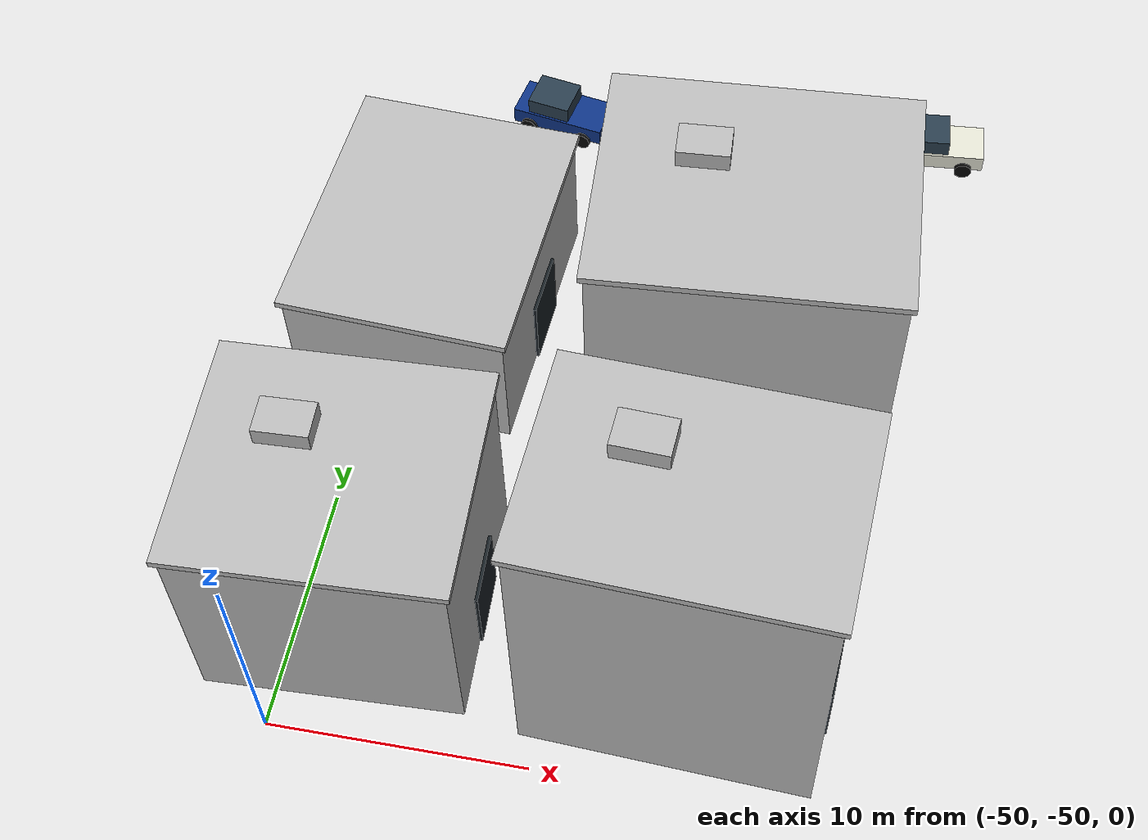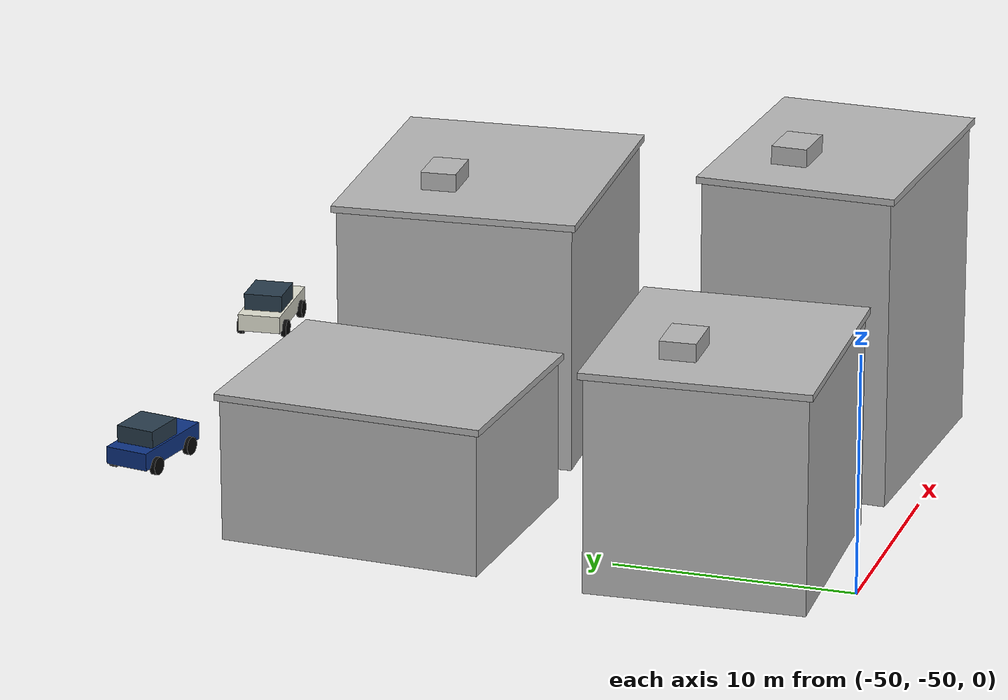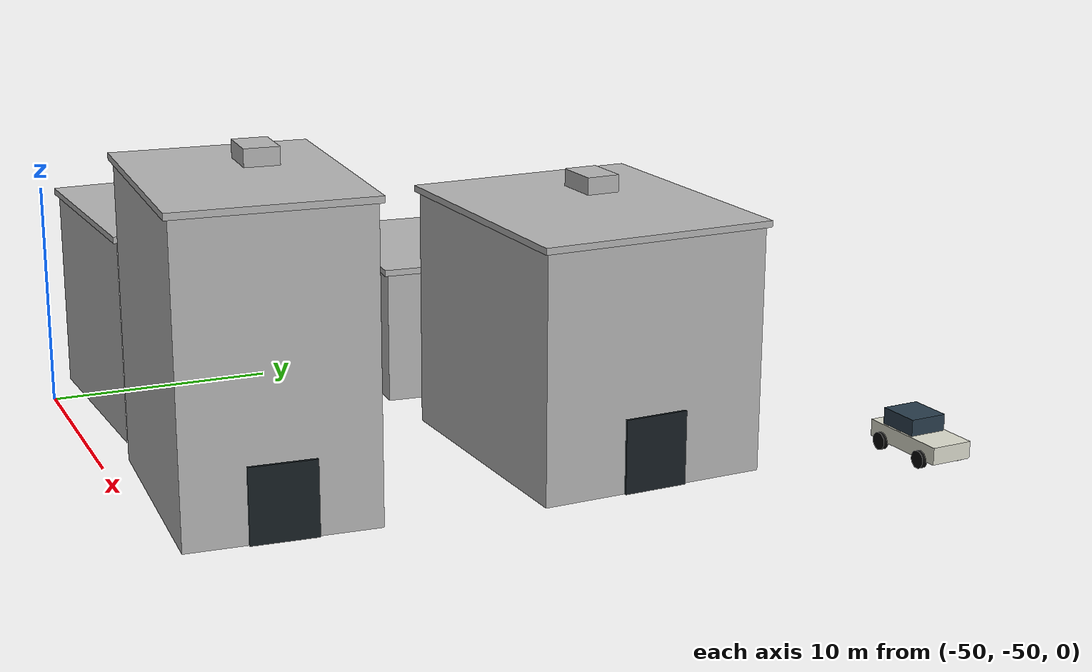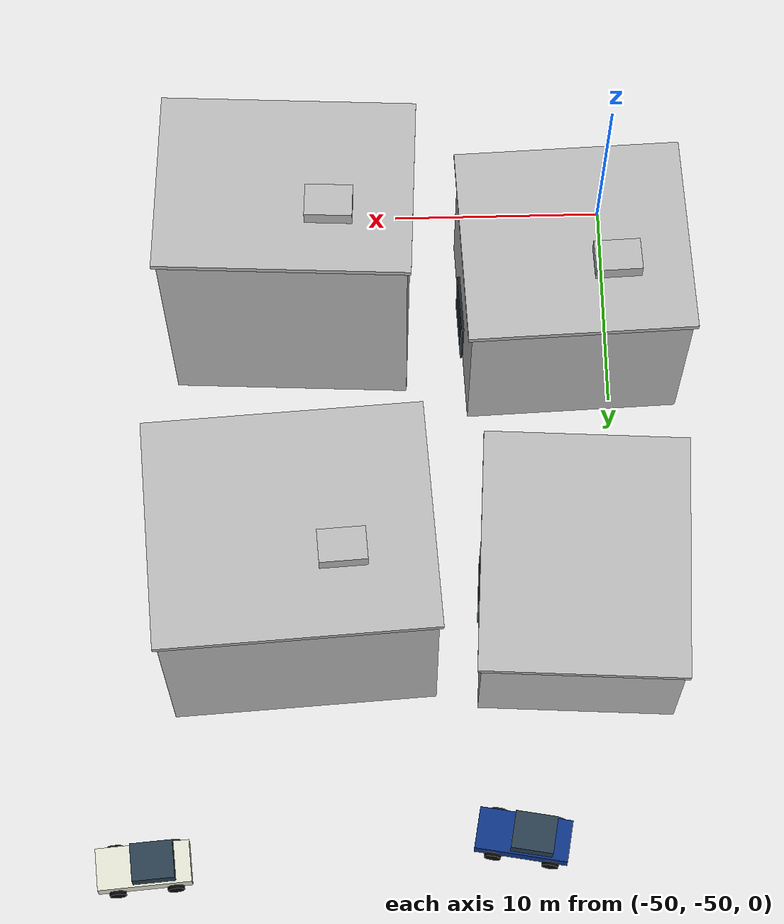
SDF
<sdf version="1.6">
 <world name="uav_complex_120m">
  <model name="urban_a">
   <static>true</static>
   <link name="shell">
    <pose>0 0 4.5 0 0 0</pose>
    <collision name="collision">
     <geometry><box><size>10 9 9</size></box></geometry>
     <laser_retro>100</laser_retro>
     <surface><friction><ode><mu>1.0</mu><mu2>1.0</mu2></ode></friction></surface>
    </collision>
    <visual name="visual">
     <geometry><box><size>10 9 9</size></box></geometry>
     <material>
      <script>
       <uri>model://uav_complex_scene/materials/scripts</uri>
       <uri>model://uav_complex_scene/materials/textures</uri>
       <name>UAVComplex/Brick</name>
      </script>
     </material>
    </visual>
   </link>
   <link name="roof">
    <pose>0 0 9.14 0 0 0</pose>
    <collision name="collision">
     <geometry><box><size>10.35 9.35 0.28</size></box></geometry>
     <laser_retro>100</laser_retro>
     <surface><friction><ode><mu>1.0</mu><mu2>1.0</mu2></ode></friction></surface>
    </collision>
    <visual name="visual">
     <geometry><box><size>10.35 9.35 0.28</size></box></geometry>
     <material>
      <script>
       <uri>model://uav_complex_scene/materials/scripts</uri>
       <uri>model://uav_complex_scene/materials/textures</uri>
       <name>UAVComplex/RustedSteel</name>
      </script>
     </material>
    </visual>
   </link>
   <link name="door">
    <pose>5.065 0 1.6 0 0 0</pose>
    <visual name="visual">
     <geometry><box><size>0.12 2.8 3.2</size></box></geometry>
     <material>
      <ambient>0.09 0.12 0.14 1</ambient>
      <diffuse>0.09 0.12 0.14 1</diffuse>
      <specular>0.08 0.08 0.08 1</specular>
     </material>
    </visual>
   </link>
   <link name="roof_unit">
    <pose>-1.8 1.26 9.59 0 0 0</pose>
    <collision name="collision">
     <geometry><box><size>2.1 1.5 0.9</size></box></geometry>
     <laser_retro>100</laser_retro>
     <surface><friction><ode><mu>1.0</mu><mu2>1.0</mu2></ode></friction></surface>
    </collision>
    <visual name="visual">
     <geometry><box><size>2.1 1.5 0.9</size></box></geometry>
     <material>
      <script>
       <uri>model://uav_complex_scene/materials/scripts</uri>
       <uri>model://uav_complex_scene/materials/textures</uri>
       <name>UAVComplex/RustedSteel</name>
      </script>
     </material>
    </visual>
   </link>
   <pose>-48 -44 0 0 0 0.04</pose>
  </model>
  <model name="urban_b">
   <static>true</static>
   <link name="shell">
    <pose>0 0 6.5 0 0 0</pose>
    <collision name="collision">
     <geometry><box><size>11 8 13</size></box></geometry>
     <laser_retro>100</laser_retro>
     <surface><friction><ode><mu>1.0</mu><mu2>1.0</mu2></ode></friction></surface>
    </collision>
    <visual name="visual">
     <geometry><box><size>11 8 13</size></box></geometry>
     <material>
      <script>
       <uri>model://uav_complex_scene/materials/scripts</uri>
       <uri>model://uav_complex_scene/materials/textures</uri>
       <name>UAVComplex/Brick</name>
      </script>
     </material>
    </visual>
   </link>
   <link name="roof">
    <pose>0 0 13.14 0 0 0</pose>
    <collision name="collision">
     <geometry><box><size>11.35 8.35 0.28</size></box></geometry>
     <laser_retro>100</laser_retro>
     <surface><friction><ode><mu>1.0</mu><mu2>1.0</mu2></ode></friction></surface>
    </collision>
    <visual name="visual">
     <geometry><box><size>11.35 8.35 0.28</size></box></geometry>
     <material>
      <script>
       <uri>model://uav_complex_scene/materials/scripts</uri>
       <uri>model://uav_complex_scene/materials/textures</uri>
       <name>UAVComplex/RustedSteel</name>
      </script>
     </material>
    </visual>
   </link>
   <link name="door">
    <pose>5.565 0 1.6 0 0 0</pose>
    <visual name="visual">
     <geometry><box><size>0.12 2.8 3.2</size></box></geometry>
     <material>
      <ambient>0.09 0.12 0.14 1</ambient>
      <diffuse>0.09 0.12 0.14 1</diffuse>
      <specular>0.08 0.08 0.08 1</specular>
     </material>
    </visual>
   </link>
   <link name="roof_unit">
    <pose>-1.98 1.12 13.59 0 0 0</pose>
    <collision name="collision">
     <geometry><box><size>2.1 1.5 0.9</size></box></geometry>
     <laser_retro>100</laser_retro>
     <surface><friction><ode><mu>1.0</mu><mu2>1.0</mu2></ode></friction></surface>
    </collision>
    <visual name="visual">
     <geometry><box><size>2.1 1.5 0.9</size></box></geometry>
     <material>
      <script>
       <uri>model://uav_complex_scene/materials/scripts</uri>
       <uri>model://uav_complex_scene/materials/textures</uri>
       <name>UAVComplex/RustedSteel</name>
      </script>
     </material>
    </visual>
   </link>
   <pose>-35 -45 0 0 0 -0.05</pose>
  </model>
  <model name="urban_d">
   <static>true</static>
   <link name="shell">
    <pose>0 0 3 0 0 0</pose>
    <collision name="collision">
     <geometry><box><size>9 11 6</size></box></geometry>
     <laser_retro>100</laser_retro>
     <surface><friction><ode><mu>1.0</mu><mu2>1.0</mu2></ode></friction></surface>
    </collision>
    <visual name="visual">
     <geometry><box><size>9 11 6</size></box></geometry>
     <material>
      <script>
       <uri>model://uav_complex_scene/materials/scripts</uri>
       <uri>model://uav_complex_scene/materials/textures</uri>
       <name>UAVComplex/Brick</name>
      </script>
     </material>
    </visual>
   </link>
   <link name="roof">
    <pose>0 0 6.14 0 0 0</pose>
    <collision name="collision">
     <geometry><box><size>9.35 11.35 0.28</size></box></geometry>
     <laser_retro>100</laser_retro>
     <surface><friction><ode><mu>1.0</mu><mu2>1.0</mu2></ode></friction></surface>
    </collision>
    <visual name="visual">
     <geometry><box><size>9.35 11.35 0.28</size></box></geometry>
     <material>
      <script>
       <uri>model://uav_complex_scene/materials/scripts</uri>
       <uri>model://uav_complex_scene/materials/textures</uri>
       <name>UAVComplex/RustedSteel</name>
      </script>
     </material>
    </visual>
   </link>
   <link name="door">
    <pose>4.565 0 1.6 0 0 0</pose>
    <visual name="visual">
     <geometry><box><size>0.12 2.8 3.2</size></box></geometry>
     <material>
      <ambient>0.09 0.12 0.14 1</ambient>
      <diffuse>0.09 0.12 0.14 1</diffuse>
      <specular>0.08 0.08 0.08 1</specular>
     </material>
    </visual>
   </link>
   <pose>-48 -30 0 0 0 -0.06</pose>
  </model>
  <model name="urban_e">
   <static>true</static>
   <link name="shell">
    <pose>0 0 5.25 0 0 0</pose>
    <collision name="collision">
     <geometry><box><size>12 10 10.5</size></box></geometry>
     <laser_retro>100</laser_retro>
     <surface><friction><ode><mu>1.0</mu><mu2>1.0</mu2></ode></friction></surface>
    </collision>
    <visual name="visual">
     <geometry><box><size>12 10 10.5</size></box></geometry>
     <material>
      <script>
       <uri>model://uav_complex_scene/materials/scripts</uri>
       <uri>model://uav_complex_scene/materials/textures</uri>
       <name>UAVComplex/Brick</name>
      </script>
     </material>
    </visual>
   </link>
   <link name="roof">
    <pose>0 0 10.64 0 0 0</pose>
    <collision name="collision">
     <geometry><box><size>12.35 10.35 0.28</size></box></geometry>
     <laser_retro>100</laser_retro>
     <surface><friction><ode><mu>1.0</mu><mu2>1.0</mu2></ode></friction></surface>
    </collision>
    <visual name="visual">
     <geometry><box><size>12.35 10.35 0.28</size></box></geometry>
     <material>
      <script>
       <uri>model://uav_complex_scene/materials/scripts</uri>
       <uri>model://uav_complex_scene/materials/textures</uri>
       <name>UAVComplex/RustedSteel</name>
      </script>
     </material>
    </visual>
   </link>
   <link name="door">
    <pose>6.065 0 1.6 0 0 0</pose>
    <visual name="visual">
     <geometry><box><size>0.12 2.8 3.2</size></box></geometry>
     <material>
      <ambient>0.09 0.12 0.14 1</ambient>
      <diffuse>0.09 0.12 0.14 1</diffuse>
      <specular>0.08 0.08 0.08 1</specular>
     </material>
    </visual>
   </link>
   <link name="roof_unit">
    <pose>-2.16 1.4 11.09 0 0 0</pose>
    <collision name="collision">
     <geometry><box><size>2.1 1.5 0.9</size></box></geometry>
     <laser_retro>100</laser_retro>
     <surface><friction><ode><mu>1.0</mu><mu2>1.0</mu2></ode></friction></surface>
    </collision>
    <visual name="visual">
     <geometry><box><size>2.1 1.5 0.9</size></box></geometry>
     <material>
      <script>
       <uri>model://uav_complex_scene/materials/scripts</uri>
       <uri>model://uav_complex_scene/materials/textures</uri>
       <name>UAVComplex/RustedSteel</name>
      </script>
     </material>
    </visual>
   </link>
   <pose>-35 -30 0 0 0 0.06</pose>
  </model>
  <model name="urban_van">
   <static>true</static>
   <link name="body">
    <pose>0 0 0.85 0 0 0</pose>
    <collision name="collision">
     <geometry><box><size>4.2 1.9 0.75</size></box></geometry>
     <laser_retro>100</laser_retro>
     <surface><friction><ode><mu>1.0</mu><mu2>1.0</mu2></ode></friction></surface>
    </collision>
    <visual name="visual">
     <geometry><box><size>4.2 1.9 0.75</size></box></geometry>
     <material>
      <ambient>0.88 0.88 0.82 1</ambient>
      <diffuse>0.88 0.88 0.82 1</diffuse>
      <specular>0.08 0.08 0.08 1</specular>
     </material>
    </visual>
   </link>
   <link name="cabin">
    <pose>-0.45 0 1.55 0 0 0</pose>
    <collision name="collision">
     <geometry><box><size>1.9 1.7 0.8</size></box></geometry>
     <laser_retro>100</laser_retro>
     <surface><friction><ode><mu>1.0</mu><mu2>1.0</mu2></ode></friction></surface>
    </collision>
    <visual name="visual">
     <geometry><box><size>1.9 1.7 0.8</size></box></geometry>
     <material>
      <ambient>0.16 0.24 0.3 1</ambient>
      <diffuse>0.16 0.24 0.3 1</diffuse>
      <specular>0.08 0.08 0.08 1</specular>
     </material>
    </visual>
   </link>
   <link name="wheel_0">
    <pose>-1.35 -1 0.48 1.5708 0 0</pose>
    <collision name="collision">
     <geometry><cylinder><radius>0.38</radius><length>0.24</length></cylinder></geometry>
     <laser_retro>100</laser_retro>
     <surface><friction><ode><mu>1.0</mu><mu2>1.0</mu2></ode></friction></surface>
    </collision>
    <visual name="visual">
     <geometry><cylinder><radius>0.38</radius><length>0.24</length></cylinder></geometry>
     <material>
      <ambient>0.025 0.025 0.025 1</ambient>
      <diffuse>0.025 0.025 0.025 1</diffuse>
      <specular>0.08 0.08 0.08 1</specular>
     </material>
    </visual>
   </link>
   <link name="wheel_1">
    <pose>-1.35 1 0.48 1.5708 0 0</pose>
    <collision name="collision">
     <geometry><cylinder><radius>0.38</radius><length>0.24</length></cylinder></geometry>
     <laser_retro>100</laser_retro>
     <surface><friction><ode><mu>1.0</mu><mu2>1.0</mu2></ode></friction></surface>
    </collision>
    <visual name="visual">
     <geometry><cylinder><radius>0.38</radius><length>0.24</length></cylinder></geometry>
     <material>
      <ambient>0.025 0.025 0.025 1</ambient>
      <diffuse>0.025 0.025 0.025 1</diffuse>
      <specular>0.08 0.08 0.08 1</specular>
     </material>
    </visual>
   </link>
   <link name="wheel_2">
    <pose>1.25 -1 0.48 1.5708 0 0</pose>
    <collision name="collision">
     <geometry><cylinder><radius>0.38</radius><length>0.24</length></cylinder></geometry>
     <laser_retro>100</laser_retro>
     <surface><friction><ode><mu>1.0</mu><mu2>1.0</mu2></ode></friction></surface>
    </collision>
    <visual name="visual">
     <geometry><cylinder><radius>0.38</radius><length>0.24</length></cylinder></geometry>
     <material>
      <ambient>0.025 0.025 0.025 1</ambient>
      <diffuse>0.025 0.025 0.025 1</diffuse>
      <specular>0.08 0.08 0.08 1</specular>
     </material>
    </visual>
   </link>
   <link name="wheel_3">
    <pose>1.25 1 0.48 1.5708 0 0</pose>
    <collision name="collision">
     <geometry><cylinder><radius>0.38</radius><length>0.24</length></cylinder></geometry>
     <laser_retro>100</laser_retro>
     <surface><friction><ode><mu>1.0</mu><mu2>1.0</mu2></ode></friction></surface>
    </collision>
    <visual name="visual">
     <geometry><cylinder><radius>0.38</radius><length>0.24</length></cylinder></geometry>
     <material>
      <ambient>0.025 0.025 0.025 1</ambient>
      <diffuse>0.025 0.025 0.025 1</diffuse>
      <specular>0.08 0.08 0.08 1</specular>
     </material>
    </visual>
   </link>
   <pose>-28 -17.5 0 0 0 0.08</pose>
  </model>
  <model name="urban_car">
   <static>true</static>
   <link name="body">
    <pose>0 0 0.85 0 0 0</pose>
    <collision name="collision">
     <geometry><box><size>4.2 1.9 0.75</size></box></geometry>
     <laser_retro>100</laser_retro>
     <surface><friction><ode><mu>1.0</mu><mu2>1.0</mu2></ode></friction></surface>
    </collision>
    <visual name="visual">
     <geometry><box><size>4.2 1.9 0.75</size></box></geometry>
     <material>
      <ambient>0.05 0.2 0.52 1</ambient>
      <diffuse>0.05 0.2 0.52 1</diffuse>
      <specular>0.08 0.08 0.08 1</specular>
     </material>
    </visual>
   </link>
   <link name="cabin">
    <pose>-0.45 0 1.55 0 0 0</pose>
    <collision name="collision">
     <geometry><box><size>1.9 1.7 0.8</size></box></geometry>
     <laser_retro>100</laser_retro>
     <surface><friction><ode><mu>1.0</mu><mu2>1.0</mu2></ode></friction></surface>
    </collision>
    <visual name="visual">
     <geometry><box><size>1.9 1.7 0.8</size></box></geometry>
     <material>
      <ambient>0.16 0.24 0.3 1</ambient>
      <diffuse>0.16 0.24 0.3 1</diffuse>
      <specular>0.08 0.08 0.08 1</specular>
     </material>
    </visual>
   </link>
   <link name="wheel_0">
    <pose>-1.35 -1 0.48 1.5708 0 0</pose>
    <collision name="collision">
     <geometry><cylinder><radius>0.38</radius><length>0.24</length></cylinder></geometry>
     <laser_retro>100</laser_retro>
     <surface><friction><ode><mu>1.0</mu><mu2>1.0</mu2></ode></friction></surface>
    </collision>
    <visual name="visual">
     <geometry><cylinder><radius>0.38</radius><length>0.24</length></cylinder></geometry>
     <material>
      <ambient>0.025 0.025 0.025 1</ambient>
      <diffuse>0.025 0.025 0.025 1</diffuse>
      <specular>0.08 0.08 0.08 1</specular>
     </material>
    </visual>
   </link>
   <link name="wheel_1">
    <pose>-1.35 1 0.48 1.5708 0 0</pose>
    <collision name="collision">
     <geometry><cylinder><radius>0.38</radius><length>0.24</length></cylinder></geometry>
     <laser_retro>100</laser_retro>
     <surface><friction><ode><mu>1.0</mu><mu2>1.0</mu2></ode></friction></surface>
    </collision>
    <visual name="visual">
     <geometry><cylinder><radius>0.38</radius><length>0.24</length></cylinder></geometry>
     <material>
      <ambient>0.025 0.025 0.025 1</ambient>
      <diffuse>0.025 0.025 0.025 1</diffuse>
      <specular>0.08 0.08 0.08 1</specular>
     </material>
    </visual>
   </link>
   <link name="wheel_2">
    <pose>1.25 -1 0.48 1.5708 0 0</pose>
    <collision name="collision">
     <geometry><cylinder><radius>0.38</radius><length>0.24</length></cylinder></geometry>
     <laser_retro>100</laser_retro>
     <surface><friction><ode><mu>1.0</mu><mu2>1.0</mu2></ode></friction></surface>
    </collision>
    <visual name="visual">
     <geometry><cylinder><radius>0.38</radius><length>0.24</length></cylinder></geometry>
     <material>
      <ambient>0.025 0.025 0.025 1</ambient>
      <diffuse>0.025 0.025 0.025 1</diffuse>
      <specular>0.08 0.08 0.08 1</specular>
     </material>
    </visual>
   </link>
   <link name="wheel_3">
    <pose>1.25 1 0.48 1.5708 0 0</pose>
    <collision name="collision">
     <geometry><cylinder><radius>0.38</radius><length>0.24</length></cylinder></geometry>
     <laser_retro>100</laser_retro>
     <surface><friction><ode><mu>1.0</mu><mu2>1.0</mu2></ode></friction></surface>
    </collision>
    <visual name="visual">
     <geometry><cylinder><radius>0.38</radius><length>0.24</length></cylinder></geometry>
     <material>
      <ambient>0.025 0.025 0.025 1</ambient>
      <diffuse>0.025 0.025 0.025 1</diffuse>
      <specular>0.08 0.08 0.08 1</specular>
     </material>
    </visual>
   </link>
   <pose>-45 -18.5 0 0 0 -0.18</pose>
  </model>
 </world>
</sdf>
